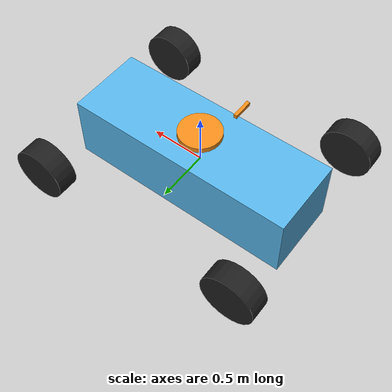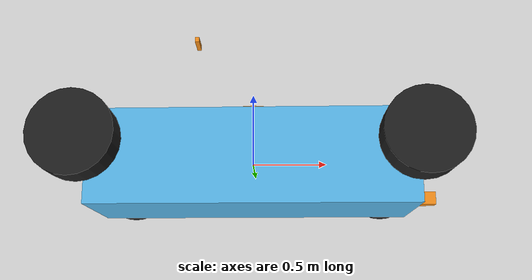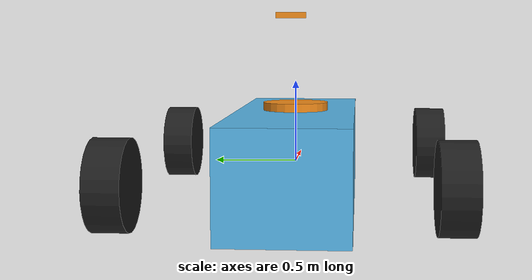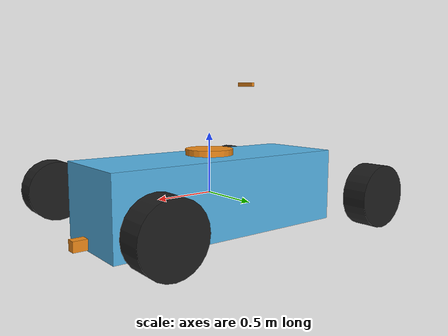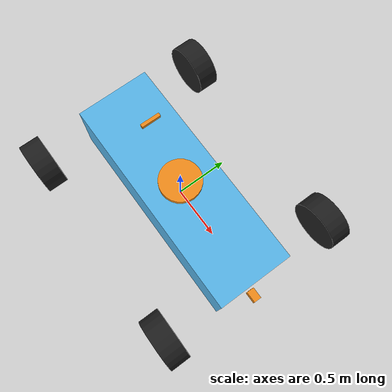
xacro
<?xml version="1.0"?>
<robot xmlns:xacro="http://www.ros.org/wiki/xacro" name="qev">

    <xacro:property name="M_PI" value="3.1415926535897931" />

    <!-- Config parameters -->

    <!--  Load the config file  -->
    <xacro:property name="config" value="${load_yaml('$(arg config_file)')}"/>

    <!-- Imported elements -->

    <!--  Import the wheels  -->
    <xacro:include filename="$(find qutms_description)/urdf/wheels.urdf.xacro"/>

    <!-- Import base element with the chassis -->
    <xacro:include filename="$(find qutms_description)/urdf/car_base.urdf.xacro"/>

    <!--  Include the plugins  -->
    <xacro:include filename="$(find qutms_description)/urdf/plugins.gazebo.xacro"/>

    <!-- GPS -->
    <xacro:include filename="$(find qutms_description)/sensors/gps.urdf.xacro" />
    <!-- IMU -->
    <xacro:include filename="$(find qutms_description)/sensors/imu.urdf.xacro" />
    <!-- LIDAR -->
    <xacro:include filename="$(find qutms_description)/sensors/horizon_lidar.urdf.xacro"/>
    <!-- Camera -->
    <xacro:include filename="$(find qutms_description)/sensors/zed_camera.urdf.xacro" />

    <!-- Robot Elements -->

    <!-- Chassis of the car -->
    <xacro:car_base chassis_length="2.165" chassis_width="0.735" chassis_height="0.63"/>

    <!-- Wheels -->
    <xacro:wheels chassis_width="2" wheelbase="2.0"/>

    <!-- GPS -->
    <xacro:gps parent="base_footprint">
        <origin xyz="0 0 0.345" rpy="0 0 0" />
    </xacro:gps>

    <!-- IMU -->
    <xacro:imu parent="base_footprint">
        <origin xyz="0 0 0" rpy="0 0 ${M_PI/2}" />
    </xacro:imu>

    <!-- LiDAR -->
    <xacro:horizon_lidar parent="base_footprint">
        <origin xyz="1.17 0 -0.24" rpy="0 0 0" />
    </xacro:horizon_lidar>

    <!-- Camera -->
    <xacro:zed_camera parent="base_footprint">
        <origin xyz="-0.4 0 0.9" rpy="0 0 0" />
    </xacro:zed_camera>

</robot>

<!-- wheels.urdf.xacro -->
<robot name="wheels"
	xmlns:xacro="http://www.ros.org/wiki/xacro">
	<xacro:macro name="wheels" params="chassis_width wheelbase">

		<!-- Parameters -->

		<xacro:property name="degrees_90" value="1.5708"/>

		<xacro:property name="wheel_mass" value="10.0"/>

		<xacro:property name="wheel_diameter" value="0.505"/>
		<xacro:property name="wheel_width" value="0.2"/>

		<xacro:property name="wheel_friction_mu1" value="2"/>
		<xacro:property name="wheel_friction_mu2" value="2"/>
		<xacro:property name="wheel_friction_kp" value="1e8"/>

		<xacro:property name="steering_hinge_mass" value="1"/>

		<!-- Wheel description -->

		<xacro:macro name="wheel" params="lr_prefix fr_prefix">
			<link name="${lr_prefix}_${fr_prefix}_wheel">
				<inertial>
					<origin xyz="0 0 0" rpy="0 0 0" />
					<mass value="${wheel_mass}"/>
					<inertia ixx="0.3" ixy="0" ixz="0" iyy="0.2" iyz="0" izz="0.2" />
				</inertial>

				<visual>
					<origin xyz="0 0 0" rpy="${degrees_90} 0 0"/>
					<geometry>
						<cylinder radius="${wheel_diameter / 2}" length="${wheel_width}"/>
					</geometry>
				</visual>

				<collision>
					<origin xyz="0 0 0" rpy="${degrees_90} 0 0"/>
					<geometry>
						<cylinder radius="${wheel_diameter / 2}" length="${wheel_width}"/>
					</geometry>
				</collision>
			</link>

			<gazebo reference="${lr_prefix}_${fr_prefix}_wheel">
				<material>Gazebo/Black</material>
				<mu1>${wheel_friction_mu1}</mu1>
				<mu2>${wheel_friction_mu2}</mu2>
				<kp>${wheel_friction_kp}</kp>
			</gazebo>
		</xacro:macro>

		<!-- Front and rear wheel descriptions -->

		<!-- Description of how a front wheel is connected to the base_footprint -->
		<xacro:macro name="front_wheel" params="lr_prefix lr_reflect">

			<joint name="${lr_prefix}_steering_hinge_joint" type="revolute">
				<origin xyz="${wheelbase / 2}
                     ${lr_reflect * ((chassis_width - wheel_width) / 2)}
                     0" rpy="0 0 0"/>
				<parent link="base_footprint"/>
				<child link="${lr_prefix}_steering_hinge"/>
				<axis xyz="0 0 1"/>
				<limit lower="${config['input_ranges']['steering']['min']}" upper="${config['input_ranges']['steering']['max']}" effort="10000000" velocity="1000000"/>
			</joint>

			<link name="${lr_prefix}_steering_hinge">
				<inertial>
					<origin xyz="0 0 0" rpy="0 0 0" />
					<mass value="${steering_hinge_mass}"/>
					<inertia ixx="0.04" ixy="0.0" ixz="0.0" iyy="0.04" iyz="0.0" izz="0.04" />
				</inertial>
			</link>

			<joint name="front_${lr_prefix}_wheel_joint" type="continuous">
				<origin xyz="0 0 0" rpy="0 0 0"/>
				<parent link="${lr_prefix}_steering_hinge"/>
				<child link="${lr_prefix}_front_wheel"/>
				<axis xyz="0 1 0"/>
				<limit lower="0" upper="0" effort="10000000" velocity="1000000"/>
			</joint>

			<xacro:wheel lr_prefix="${lr_prefix}" fr_prefix="front"/>
		</xacro:macro>

		<!-- Description of how a rear wheel is connected to the base_footprint -->
		<xacro:macro name="rear_wheel" params="lr_prefix lr_reflect">

			<joint name="rear_${lr_prefix}_wheel_joint" type="continuous">
				<origin xyz="${-1 * wheelbase / 2}
                     ${lr_reflect * ((chassis_width - wheel_width) / 2)}
                     0" rpy="0 0 0"/>
				<parent link="base_footprint"/>
				<child link="${lr_prefix}_rear_wheel"/>
				<axis xyz="0 1 0"/>
				<limit lower="0" upper="0" effort="10000000" velocity="1000000"/>
			</joint>

			<xacro:wheel lr_prefix="${lr_prefix}" fr_prefix="rear"/>
		</xacro:macro>

		<!-- Add the wheels -->

		<xacro:front_wheel lr_prefix="left" lr_reflect="1"/>
		<xacro:front_wheel lr_prefix="right" lr_reflect="-1"/>

		<xacro:rear_wheel lr_prefix="left" lr_reflect="1" />
		<xacro:rear_wheel lr_prefix="right" lr_reflect="-1" />
	</xacro:macro>

</robot>

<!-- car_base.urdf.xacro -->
<robot name="base"
    xmlns:xacro="http://www.ros.org/wiki/xacro">
    <xacro:macro name="car_base" params="chassis_width chassis_length chassis_height">

        <!-- BASE FOOTPRINT -->
        <link name="base_footprint"/>

        <joint name="chassis_joint" type="fixed">
            <parent link="base_footprint"/>
            <child link="chassis"/>
            <origin xyz="0 0 0" rpy="0 0 0"/>
            <axis xyz="1 0 0"/>
        </joint>

        <link name="chassis">
            <visual>
                <origin xyz="0 0 0" rpy="0 0 0" />
                <geometry>
                    <box size="${chassis_length} ${chassis_width} ${chassis_height}"/>
                </geometry>
            </visual>
            <inertial>
                <origin xyz="0 0 0" rpy="0 0 0" />
                <mass value="140" />
                <inertia ixx="16.3" ixy="0" ixz="0" iyy="33.6" iyz="0" izz="47.9" />
            </inertial>
            <collision>
                <origin xyz="0 0 0" rpy="0 0 0" />
                <geometry>
                    <box size="${chassis_length} ${chassis_width} ${chassis_height}"/>
                </geometry>
            </collision>
        </link>

    </xacro:macro>
</robot>

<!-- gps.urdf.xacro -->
<robot xmlns:xacro="http://ros.org/wiki/xacro">
	<xacro:macro name="gps" params="*origin parent:=base_footprint name:=gps topic_name:=gps/data update_rate:=30.0">

		<!-- GPS Base Mount Joint -->
		<joint name="${name}_base_mount_joint" type="fixed">
			<xacro:insert_block name="origin"/>
			<parent link="${parent}"/>
			<child link="${name}_base_footprint"/>
		</joint>

		<!-- GPS Base -->
		<link name="${name}_base_footprint">
			<inertial>
				<mass value="0.8" />
				<origin xyz="0 0 0"/>
				<inertia ixx="0.016" ixy="0" ixz="0" iyy="0.049" iyz="0" izz="0.049" />
			</inertial>
			<visual>
				<origin xyz="0 0 0" rpy="0 0 0" />
				<geometry>
					<cylinder length="0.05" radius="0.2" />
				</geometry>
			</visual>
			<collision>
				<origin xyz="0 0 0" rpy="0 0 0" />
				<geometry>
					<cylinder length="0.05" radius="0.2" />
				</geometry>
			</collision>
		</link>

		<gazebo reference="${name}_base_footprint">
			<material>Gazebo/Orange</material>
		</gazebo>

		<gazebo>
			<plugin name="gps_plugin" filename="libhector_gazebo_ros_gps.so">
				<robotNamespace>qev</robotNamespace>
				<updateRate>30</updateRate>
				<bodyName>${name}_base_footprint</bodyName>
				<frameId>base_footprint</frameId>
				<topicName>${topic_name}</topicName>
				<velocityTopicName>gps/vel</velocityTopicName>
				<referenceLatitude>49.9</referenceLatitude>
				<referenceLongitude>8.9</referenceLongitude>
				<referenceHeading>0</referenceHeading>
				<referenceAltitude>0</referenceAltitude>
				<drift>0.0001 0.0001 0.0001</drift>
			</plugin>
		</gazebo>
	</xacro:macro>
</robot>

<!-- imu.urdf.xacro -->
<robot xmlns:xacro="http://ros.org/wiki/xacro">
	<xacro:macro name="imu" params="*origin parent:=base_footprint name:=imu topic_name:=imu/data update_rate:=30.0">

		<!-- IMU Base Mount Joint -->
		<joint name="${name}_base_mount_joint" type="fixed">
			<xacro:insert_block name="origin" />
			<parent link="${parent}"/>
			<child link="${name}_base_footprint"/>
		</joint>

		<!-- IMU Base -->
		<link name="${name}_base_footprint">
			<inertial>
				<mass value="0.385" />
				<origin xyz="0 0 0"/>
				<inertia ixx="0.00000008608" ixy="0" ixz="0" iyy="0.00000033679" iyz="0" izz="0.00000860809" />
			</inertial>
			<visual>
				<origin xyz="0 0 0" rpy="0 0 0" />
				<geometry>
					<box size="0.18 0.091 0.018"/>
				</geometry>
			</visual>
			<collision>
				<origin xyz="0 0 0" rpy="0 0 0" />
				<geometry>
					<box size="0.18 0.091 0.018"/>
				</geometry>
			</collision>
		</link>

		<gazebo>
			<material>Gazebo/Orange</material>
			<plugin name="imu_plugin" filename="libhector_gazebo_ros_imu.so">
				<robotNamespace>qev</robotNamespace>
				<updateRate>${update_rate}</updateRate>
				<bodyName>${name}_base_footprint</bodyName>
				<topicName>${topic_name}</topicName>
				<accelDrift>0.005 0.005 0.005</accelDrift>
				<accelGaussianNoise>0.005 0.005 0.005</accelGaussianNoise>
				<rateDrift>0.005 0.005 0.005 </rateDrift>
				<rateGaussianNoise>0.005 0.005 0.005 </rateGaussianNoise>
				<headingDrift>0.005</headingDrift>
				<headingGaussianNoise>0.005</headingGaussianNoise>
			</plugin>
		</gazebo>

	</xacro:macro>
</robot>

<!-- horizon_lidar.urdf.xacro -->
<robot xmlns:xacro="http://ros.org/wiki/xacro">
    <xacro:macro name="horizon_lidar" params=" *origin parent:=base_footprint name:=horizon_lidar">

        <xacro:property name="M_PI" value="3.1415926535897931" />

        <joint name="${name}_base_mount_joint" type="fixed">
            <xacro:insert_block name="origin" />
            <parent link="${parent}"/>
            <child link="${name}_base_footprint"/>
        </joint>

        <link name="${name}_base_footprint">
            <inertial>
                <mass value="1.18"/>
                <origin xyz="0 0 0" rpy="0 0 0" />
                <inertia ixx="0.00199429833" ixy="0" ixz="0" iyy="0.00188347666" iyz="0" izz="0.00127685833"/>
            </inertial>
            <visual>
                <geometry>
                    <box size="0.115 0.077 0.084"/>
                </geometry>
            </visual>
            <collision>
                <origin xyz="0 0 0" rpy="0 0 0" />
                <geometry>
                    <box size="0.115 0.077 0.084"/>
                </geometry>
            </collision>
        </link>

        <gazebo reference="${name}_base_footprint">
            <material>Gazebo/Orange</material>
            <sensor type="ray" name="${name}_sensor">
                <pose>0 0 0 0 0 0</pose>
                <update_rate>30.0</update_rate>
                <visualize>false</visualize>
                <ray>
                    <scan>
                        <horizontal>
                            <samples>100</samples>
                            <resolution>1</resolution>
                            <min_angle>-${(M_PI/180)*(81.7/2)}</min_angle>
                            <max_angle>${(M_PI/180)*(81.7/2)}</max_angle>
                        </horizontal>
                        <vertical>
                            <samples>100</samples>
                            <resolution>1</resolution>
                            <min_angle>-${(M_PI/180)*(25.1/2)}</min_angle>
                            <max_angle>${(M_PI/180)*(25.1/2)}</max_angle>
                        </vertical>
                    </scan>
                    <range>
                        <min>1</min>
                        <max>50</max>
                        <resolution>0.01</resolution>
                    </range>
                    <noise>
                        <type>gaussian</type>
                        <mean>0.0</mean>
                        <stddev>0.008</stddev>
                    </noise>
                </ray>
                <plugin name="horizon_lidar_plugin" filename="libhorizon_lidar_plugin.so">
                    <robotNamespace>qev</robotNamespace>
                    <topicName>${name}/pointcloud</topicName>
                    <frameName>${name}_base_footprint</frameName>
                </plugin>
            </sensor>
        </gazebo>

    </xacro:macro>
</robot>

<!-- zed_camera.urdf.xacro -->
<robot xmlns:xacro="http://ros.org/wiki/xacro">
	<xacro:macro name="zed_camera" params="*origin parent:=base_footprint name:=zed_camera">

		<!-- Camera Base Mount Joint -->
		<joint name="${name}_base_mount_joint" type="fixed">
			<xacro:insert_block name="origin" />
			<parent link="${parent}"/>
			<child link="${name}_base_footprint"/>
		</joint>

		<!-- Camera Base -->
		<link name="${name}_base_footprint">
			<inertial>
				<mass value="0.135" />
				<origin xyz="0 0 0"/>
				<inertia ixx="0.00000110261" ixy="0" ixz="0" iyy="0.00003751945" iyz="0" izz="0.00003100781" />
			</inertial>
			<visual>
				<origin xyz="0 0 0" rpy="0 0 0" />
				<geometry>
					<box size="0.03 0.175 0.033" />
				</geometry>
			</visual>
			<collision>
				<origin xyz="0 0 0" rpy="0 0 0" />
				<geometry>
					<box size="0.03 2.0 0.033" />
				</geometry>
			</collision>
		</link>

		<gazebo reference="${name}_base_footprint">
			<material>Gazebo/Orange</material>
			<sensor type="multicamera" name="${name}">
				<update_rate>30.0</update_rate>
				<camera name="z-left">
					<pose>0 0.06 0 0 0 0</pose>
					<horizontal_fov>1.5707963268</horizontal_fov>
					<image>
						<width>3840</width>
						<height>1080</height>
						<format>R8G8B8</format>
					</image>
					<clip>
						<near>0.5</near>
						<far>25</far>
					</clip>
					<noise>
						<type>gaussian</type>
						<mean>0.0</mean>
						<stddev>0.007</stddev>
					</noise>
				</camera>
				<camera name="z-right">
					<pose>0 -0.06 0 0 0 0</pose>
					<horizontal_fov>1.5707963268</horizontal_fov>
					<image>
						<width>3840</width>
						<height>1080</height>
						<format>R8G8B8</format>
					</image>
					<clip>
						<near>0.5</near>
						<far>25</far>
					</clip>
					<noise>
						<type>gaussian</type>
						<mean>0.0</mean>
						<stddev>0.007</stddev>
					</noise>
				</camera>
				<plugin name="camera_plugin" filename="libgazebo_ros_multicamera.so">
					<robotNamespace>qev</robotNamespace>
					<alwaysOn>true</alwaysOn>
					<updateRate>0.0</updateRate>
					<cameraName>${name}</cameraName>
					<imageTopicName>image_raw</imageTopicName>
					<cameraInfoTopicName>camera_info</cameraInfoTopicName>
					<frameName>${name}_base_footprint</frameName>
					<hackBaseline>0.07</hackBaseline>
					<distortionK1>0.0</distortionK1>
					<distortionK2>0.0</distortionK2>
					<distortionK3>0.0</distortionK3>
					<distortionT1>0.0</distortionT1>
					<distortionT2>0.0</distortionT2>
				</plugin>
			</sensor>
		</gazebo>
	</xacro:macro>
</robot>
